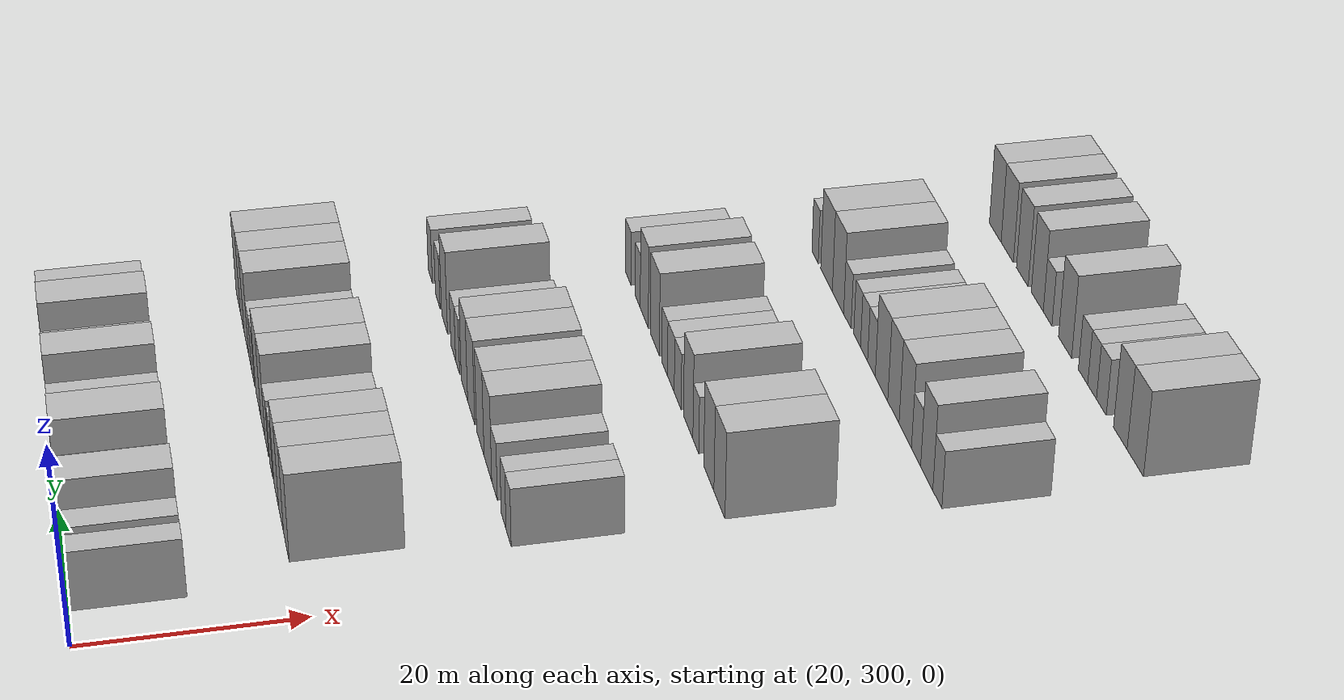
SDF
<sdf version="1.6">
 <world name="default">
  <model name="building_145">
   <static>1</static>
   <pose>25.0000 306.1564 0 0.000000 0.000000 0.000000</pose>
   <link name="link">
    <pose>0 0 3.00 0 0 0</pose>
    <collision name="collision"><geometry><box><size>10.0000 2.5360 6.0000</size></box></geometry></collision>
    <visual name="visual">
     <cast_shadows>0</cast_shadows>
     <geometry><box><size>10.0000 2.5360 6.0000</size></box></geometry>
     <material>
      <script>
       <uri>model://HANNAS_wall/materials/scripts</uri>
       <uri>model://HANNAS_wall/materials/textures</uri>
       <name>vrc/HANNAS_wall</name>
      </script>
     </material>
    </visual>
   </link>
  </model>
  <model name="building_146">
   <static>1</static>
   <pose>25.0000 309.7866 0 0.000000 0.000000 0.000000</pose>
   <link name="link">
    <pose>0 0 3.00 0 0 0</pose>
    <collision name="collision"><geometry><box><size>10.0000 2.7243 6.0000</size></box></geometry></collision>
    <visual name="visual">
     <cast_shadows>0</cast_shadows>
     <geometry><box><size>10.0000 2.7243 6.0000</size></box></geometry>
     <material>
      <script>
       <uri>model://HANNAS_wall/materials/scripts</uri>
       <uri>model://HANNAS_wall/materials/textures</uri>
       <name>vrc/HANNAS_wall</name>
      </script>
     </material>
    </visual>
   </link>
  </model>
  <model name="building_147">
   <static>1</static>
   <pose>25.0000 313.0411 0 0.000000 0.000000 0.000000</pose>
   <link name="link">
    <pose>0 0 4.50 0 0 0</pose>
    <collision name="collision"><geometry><box><size>10.0000 3.7847 9.0000</size></box></geometry></collision>
    <visual name="visual">
     <cast_shadows>0</cast_shadows>
     <geometry><box><size>10.0000 3.7847 9.0000</size></box></geometry>
     <material>
      <script>
       <uri>model://HANNAS_wall/materials/scripts</uri>
       <uri>model://HANNAS_wall/materials/textures</uri>
       <name>vrc/HANNAS_wall</name>
      </script>
     </material>
    </visual>
   </link>
  </model>
  <model name="building_148">
   <static>1</static>
   <pose>25.0000 318.2335 0 0.000000 0.000000 0.000000</pose>
   <link name="link">
    <pose>0 0 3.00 0 0 0</pose>
    <collision name="collision"><geometry><box><size>10.0000 2.6001 6.0000</size></box></geometry></collision>
    <visual name="visual">
     <cast_shadows>0</cast_shadows>
     <geometry><box><size>10.0000 2.6001 6.0000</size></box></geometry>
     <material>
      <script>
       <uri>model://HANNAS_wall/materials/scripts</uri>
       <uri>model://HANNAS_wall/materials/textures</uri>
       <name>vrc/HANNAS_wall</name>
      </script>
     </material>
    </visual>
   </link>
  </model>
  <model name="building_149">
   <static>1</static>
   <pose>25.0000 322.7456 0 0.000000 0.000000 0.000000</pose>
   <link name="link">
    <pose>0 0 4.50 0 0 0</pose>
    <collision name="collision"><geometry><box><size>10.0000 4.4243 9.0000</size></box></geometry></collision>
    <visual name="visual">
     <cast_shadows>0</cast_shadows>
     <geometry><box><size>10.0000 4.4243 9.0000</size></box></geometry>
     <material>
      <script>
       <uri>model://HANNAS_wall/materials/scripts</uri>
       <uri>model://HANNAS_wall/materials/textures</uri>
       <name>vrc/HANNAS_wall</name>
      </script>
     </material>
    </visual>
   </link>
  </model>
  <model name="building_150">
   <static>1</static>
   <pose>25.0000 326.2612 0 0.000000 0.000000 0.000000</pose>
   <link name="link">
    <pose>0 0 3.00 0 0 0</pose>
    <collision name="collision"><geometry><box><size>10.0000 2.6069 6.0000</size></box></geometry></collision>
    <visual name="visual">
     <cast_shadows>0</cast_shadows>
     <geometry><box><size>10.0000 2.6069 6.0000</size></box></geometry>
     <material>
      <script>
       <uri>model://HANNAS_wall/materials/scripts</uri>
       <uri>model://HANNAS_wall/materials/textures</uri>
       <name>vrc/HANNAS_wall</name>
      </script>
     </material>
    </visual>
   </link>
  </model>
  <model name="building_151">
   <static>1</static>
   <pose>25.0000 329.9528 0 0.000000 0.000000 0.000000</pose>
   <link name="link">
    <pose>0 0 3.00 0 0 0</pose>
    <collision name="collision"><geometry><box><size>10.0000 2.7761 6.0000</size></box></geometry></collision>
    <visual name="visual">
     <cast_shadows>0</cast_shadows>
     <geometry><box><size>10.0000 2.7761 6.0000</size></box></geometry>
     <material>
      <script>
       <uri>model://HANNAS_wall/materials/scripts</uri>
       <uri>model://HANNAS_wall/materials/textures</uri>
       <name>vrc/HANNAS_wall</name>
      </script>
     </material>
    </visual>
   </link>
  </model>
  <model name="building_152">
   <static>1</static>
   <pose>25.0000 333.2671 0 0.000000 0.000000 0.000000</pose>
   <link name="link">
    <pose>0 0 4.50 0 0 0</pose>
    <collision name="collision"><geometry><box><size>10.0000 3.8526 9.0000</size></box></geometry></collision>
    <visual name="visual">
     <cast_shadows>0</cast_shadows>
     <geometry><box><size>10.0000 3.8526 9.0000</size></box></geometry>
     <material>
      <script>
       <uri>model://HANNAS_wall/materials/scripts</uri>
       <uri>model://HANNAS_wall/materials/textures</uri>
       <name>vrc/HANNAS_wall</name>
      </script>
     </material>
    </visual>
   </link>
  </model>
  <model name="building_153">
   <static>1</static>
   <pose>25.0000 336.4068 0 0.000000 0.000000 0.000000</pose>
   <link name="link">
    <pose>0 0 3.00 0 0 0</pose>
    <collision name="collision"><geometry><box><size>10.0000 2.4267 6.0000</size></box></geometry></collision>
    <visual name="visual">
     <cast_shadows>0</cast_shadows>
     <geometry><box><size>10.0000 2.4267 6.0000</size></box></geometry>
     <material>
      <script>
       <uri>model://HANNAS_wall/materials/scripts</uri>
       <uri>model://HANNAS_wall/materials/textures</uri>
       <name>vrc/HANNAS_wall</name>
      </script>
     </material>
    </visual>
   </link>
  </model>
  <model name="building_154">
   <static>1</static>
   <pose>25.0000 339.0097 0 0.000000 0.000000 0.000000</pose>
   <link name="link">
    <pose>0 0 3.00 0 0 0</pose>
    <collision name="collision"><geometry><box><size>10.0000 2.7791 6.0000</size></box></geometry></collision>
    <visual name="visual">
     <cast_shadows>0</cast_shadows>
     <geometry><box><size>10.0000 2.7791 6.0000</size></box></geometry>
     <material>
      <script>
       <uri>model://HANNAS_wall/materials/scripts</uri>
       <uri>model://HANNAS_wall/materials/textures</uri>
       <name>vrc/HANNAS_wall</name>
      </script>
     </material>
    </visual>
   </link>
  </model>
  <model name="building_155">
   <static>1</static>
   <pose>25.0000 342.4067 0 0.000000 0.000000 0.000000</pose>
   <link name="link">
    <pose>0 0 4.50 0 0 0</pose>
    <collision name="collision"><geometry><box><size>10.0000 4.0149 9.0000</size></box></geometry></collision>
    <visual name="visual">
     <cast_shadows>0</cast_shadows>
     <geometry><box><size>10.0000 4.0149 9.0000</size></box></geometry>
     <material>
      <script>
       <uri>model://HANNAS_wall/materials/scripts</uri>
       <uri>model://HANNAS_wall/materials/textures</uri>
       <name>vrc/HANNAS_wall</name>
      </script>
     </material>
    </visual>
   </link>
  </model>
  <model name="building_156">
   <static>1</static>
   <pose>25.0000 347.7137 0 0.000000 0.000000 0.000000</pose>
   <link name="link">
    <pose>0 0 3.00 0 0 0</pose>
    <collision name="collision"><geometry><box><size>10.0000 2.5991 6.0000</size></box></geometry></collision>
    <visual name="visual">
     <cast_shadows>0</cast_shadows>
     <geometry><box><size>10.0000 2.5991 6.0000</size></box></geometry>
     <material>
      <script>
       <uri>model://HANNAS_wall/materials/scripts</uri>
       <uri>model://HANNAS_wall/materials/textures</uri>
       <name>vrc/HANNAS_wall</name>
      </script>
     </material>
    </visual>
   </link>
  </model>
  <model name="building_157">
   <static>1</static>
   <pose>25.0000 350.2978 0 0.000000 0.000000 0.000000</pose>
   <link name="link">
    <pose>0 0 3.00 0 0 0</pose>
    <collision name="collision"><geometry><box><size>10.0000 2.5691 6.0000</size></box></geometry></collision>
    <visual name="visual">
     <cast_shadows>0</cast_shadows>
     <geometry><box><size>10.0000 2.5691 6.0000</size></box></geometry>
     <material>
      <script>
       <uri>model://HANNAS_wall/materials/scripts</uri>
       <uri>model://HANNAS_wall/materials/textures</uri>
       <name>vrc/HANNAS_wall</name>
      </script>
     </material>
    </visual>
   </link>
  </model>
  <model name="building_312">
   <static>1</static>
   <pose>44.0000 310.3287 0 0.000000 0.000000 0.000000</pose>
   <link name="link">
    <pose>0 0 4.50 0 0 0</pose>
    <collision name="collision"><geometry><box><size>10.0000 4.3116 9.0000</size></box></geometry></collision>
    <visual name="visual">
     <cast_shadows>0</cast_shadows>
     <geometry><box><size>10.0000 4.3116 9.0000</size></box></geometry>
     <material>
      <script>
       <uri>model://HANNAS_wall/materials/scripts</uri>
       <uri>model://HANNAS_wall/materials/textures</uri>
       <name>vrc/HANNAS_wall</name>
      </script>
     </material>
    </visual>
   </link>
  </model>
  <model name="building_313">
   <static>1</static>
   <pose>44.0000 314.3940 0 0.000000 0.000000 0.000000</pose>
   <link name="link">
    <pose>0 0 4.50 0 0 0</pose>
    <collision name="collision"><geometry><box><size>10.0000 3.8190 9.0000</size></box></geometry></collision>
    <visual name="visual">
     <cast_shadows>0</cast_shadows>
     <geometry><box><size>10.0000 3.8190 9.0000</size></box></geometry>
     <material>
      <script>
       <uri>model://HANNAS_wall/materials/scripts</uri>
       <uri>model://HANNAS_wall/materials/textures</uri>
       <name>vrc/HANNAS_wall</name>
      </script>
     </material>
    </visual>
   </link>
  </model>
  <model name="building_314">
   <static>1</static>
   <pose>44.0000 318.1452 0 0.000000 0.000000 0.000000</pose>
   <link name="link">
    <pose>0 0 4.50 0 0 0</pose>
    <collision name="collision"><geometry><box><size>10.0000 3.6834 9.0000</size></box></geometry></collision>
    <visual name="visual">
     <cast_shadows>0</cast_shadows>
     <geometry><box><size>10.0000 3.6834 9.0000</size></box></geometry>
     <material>
      <script>
       <uri>model://HANNAS_wall/materials/scripts</uri>
       <uri>model://HANNAS_wall/materials/textures</uri>
       <name>vrc/HANNAS_wall</name>
      </script>
     </material>
    </visual>
   </link>
  </model>
  <model name="building_315">
   <static>1</static>
   <pose>44.0000 322.2474 0 0.000000 0.000000 0.000000</pose>
   <link name="link">
    <pose>0 0 3.00 0 0 0</pose>
    <collision name="collision"><geometry><box><size>10.0000 2.5209 6.0000</size></box></geometry></collision>
    <visual name="visual">
     <cast_shadows>0</cast_shadows>
     <geometry><box><size>10.0000 2.5209 6.0000</size></box></geometry>
     <material>
      <script>
       <uri>model://HANNAS_wall/materials/scripts</uri>
       <uri>model://HANNAS_wall/materials/textures</uri>
       <name>vrc/HANNAS_wall</name>
      </script>
     </material>
    </visual>
   </link>
  </model>
  <model name="building_316">
   <static>1</static>
   <pose>44.0000 325.9877 0 0.000000 0.000000 0.000000</pose>
   <link name="link">
    <pose>0 0 3.00 0 0 0</pose>
    <collision name="collision"><geometry><box><size>10.0000 2.9596 6.0000</size></box></geometry></collision>
    <visual name="visual">
     <cast_shadows>0</cast_shadows>
     <geometry><box><size>10.0000 2.9596 6.0000</size></box></geometry>
     <material>
      <script>
       <uri>model://HANNAS_wall/materials/scripts</uri>
       <uri>model://HANNAS_wall/materials/textures</uri>
       <name>vrc/HANNAS_wall</name>
      </script>
     </material>
    </visual>
   </link>
  </model>
  <model name="building_317">
   <static>1</static>
   <pose>44.0000 329.3368 0 0.000000 0.000000 0.000000</pose>
   <link name="link">
    <pose>0 0 4.50 0 0 0</pose>
    <collision name="collision"><geometry><box><size>10.0000 3.7387 9.0000</size></box></geometry></collision>
    <visual name="visual">
     <cast_shadows>0</cast_shadows>
     <geometry><box><size>10.0000 3.7387 9.0000</size></box></geometry>
     <material>
      <script>
       <uri>model://HANNAS_wall/materials/scripts</uri>
       <uri>model://HANNAS_wall/materials/textures</uri>
       <name>vrc/HANNAS_wall</name>
      </script>
     </material>
    </visual>
   </link>
  </model>
  <model name="building_318">
   <static>1</static>
   <pose>44.0000 333.4392 0 0.000000 0.000000 0.000000</pose>
   <link name="link">
    <pose>0 0 4.50 0 0 0</pose>
    <collision name="collision"><geometry><box><size>10.0000 4.4659 9.0000</size></box></geometry></collision>
    <visual name="visual">
     <cast_shadows>0</cast_shadows>
     <geometry><box><size>10.0000 4.4659 9.0000</size></box></geometry>
     <material>
      <script>
       <uri>model://HANNAS_wall/materials/scripts</uri>
       <uri>model://HANNAS_wall/materials/textures</uri>
       <name>vrc/HANNAS_wall</name>
      </script>
     </material>
    </visual>
   </link>
  </model>
  <model name="building_319">
   <static>1</static>
   <pose>44.0000 338.0121 0 0.000000 0.000000 0.000000</pose>
   <link name="link">
    <pose>0 0 3.00 0 0 0</pose>
    <collision name="collision"><geometry><box><size>10.0000 2.6801 6.0000</size></box></geometry></collision>
    <visual name="visual">
     <cast_shadows>0</cast_shadows>
     <geometry><box><size>10.0000 2.6801 6.0000</size></box></geometry>
     <material>
      <script>
       <uri>model://HANNAS_wall/materials/scripts</uri>
       <uri>model://HANNAS_wall/materials/textures</uri>
       <name>vrc/HANNAS_wall</name>
      </script>
     </material>
    </visual>
   </link>
  </model>
  <model name="building_320">
   <static>1</static>
   <pose>44.0000 340.7081 0 0.000000 0.000000 0.000000</pose>
   <link name="link">
    <pose>0 0 3.00 0 0 0</pose>
    <collision name="collision"><geometry><box><size>10.0000 2.7119 6.0000</size></box></geometry></collision>
    <visual name="visual">
     <cast_shadows>0</cast_shadows>
     <geometry><box><size>10.0000 2.7119 6.0000</size></box></geometry>
     <material>
      <script>
       <uri>model://HANNAS_wall/materials/scripts</uri>
       <uri>model://HANNAS_wall/materials/textures</uri>
       <name>vrc/HANNAS_wall</name>
      </script>
     </material>
    </visual>
   </link>
  </model>
  <model name="building_321">
   <static>1</static>
   <pose>44.0000 344.1248 0 0.000000 0.000000 0.000000</pose>
   <link name="link">
    <pose>0 0 4.50 0 0 0</pose>
    <collision name="collision"><geometry><box><size>10.0000 4.1216 9.0000</size></box></geometry></collision>
    <visual name="visual">
     <cast_shadows>0</cast_shadows>
     <geometry><box><size>10.0000 4.1216 9.0000</size></box></geometry>
     <material>
      <script>
       <uri>model://HANNAS_wall/materials/scripts</uri>
       <uri>model://HANNAS_wall/materials/textures</uri>
       <name>vrc/HANNAS_wall</name>
      </script>
     </material>
    </visual>
   </link>
  </model>
  <model name="building_322">
   <static>1</static>
   <pose>44.0000 347.9957 0 0.000000 0.000000 0.000000</pose>
   <link name="link">
    <pose>0 0 4.50 0 0 0</pose>
    <collision name="collision"><geometry><box><size>10.0000 3.6202 9.0000</size></box></geometry></collision>
    <visual name="visual">
     <cast_shadows>0</cast_shadows>
     <geometry><box><size>10.0000 3.6202 9.0000</size></box></geometry>
     <material>
      <script>
       <uri>model://HANNAS_wall/materials/scripts</uri>
       <uri>model://HANNAS_wall/materials/textures</uri>
       <name>vrc/HANNAS_wall</name>
      </script>
     </material>
    </visual>
   </link>
  </model>
  <model name="building_323">
   <static>1</static>
   <pose>44.0000 351.8408 0 0.000000 0.000000 0.000000</pose>
   <link name="link">
    <pose>0 0 4.50 0 0 0</pose>
    <collision name="collision"><geometry><box><size>10.0000 4.0699 9.0000</size></box></geometry></collision>
    <visual name="visual">
     <cast_shadows>0</cast_shadows>
     <geometry><box><size>10.0000 4.0699 9.0000</size></box></geometry>
     <material>
      <script>
       <uri>model://HANNAS_wall/materials/scripts</uri>
       <uri>model://HANNAS_wall/materials/textures</uri>
       <name>vrc/HANNAS_wall</name>
      </script>
     </material>
    </visual>
   </link>
  </model>
  <model name="building_485">
   <static>1</static>
   <pose>63.0000 307.8950 0 0.000000 0.000000 0.000000</pose>
   <link name="link">
    <pose>0 0 3.00 0 0 0</pose>
    <collision name="collision"><geometry><box><size>10.0000 2.6273 6.0000</size></box></geometry></collision>
    <visual name="visual">
     <cast_shadows>0</cast_shadows>
     <geometry><box><size>10.0000 2.6273 6.0000</size></box></geometry>
     <material>
      <script>
       <uri>model://HANNAS_wall/materials/scripts</uri>
       <uri>model://HANNAS_wall/materials/textures</uri>
       <name>vrc/HANNAS_wall</name>
      </script>
     </material>
    </visual>
   </link>
  </model>
  <model name="building_486">
   <static>1</static>
   <pose>63.0000 310.4491 0 0.000000 0.000000 0.000000</pose>
   <link name="link">
    <pose>0 0 3.00 0 0 0</pose>
    <collision name="collision"><geometry><box><size>10.0000 2.4809 6.0000</size></box></geometry></collision>
    <visual name="visual">
     <cast_shadows>0</cast_shadows>
     <geometry><box><size>10.0000 2.4809 6.0000</size></box></geometry>
     <material>
      <script>
       <uri>model://HANNAS_wall/materials/scripts</uri>
       <uri>model://HANNAS_wall/materials/textures</uri>
       <name>vrc/HANNAS_wall</name>
      </script>
     </material>
    </visual>
   </link>
  </model>
  <model name="building_487">
   <static>1</static>
   <pose>63.0000 315.1837 0 0.000000 0.000000 0.000000</pose>
   <link name="link">
    <pose>0 0 3.00 0 0 0</pose>
    <collision name="collision"><geometry><box><size>10.0000 2.9883 6.0000</size></box></geometry></collision>
    <visual name="visual">
     <cast_shadows>0</cast_shadows>
     <geometry><box><size>10.0000 2.9883 6.0000</size></box></geometry>
     <material>
      <script>
       <uri>model://HANNAS_wall/materials/scripts</uri>
       <uri>model://HANNAS_wall/materials/textures</uri>
       <name>vrc/HANNAS_wall</name>
      </script>
     </material>
    </visual>
   </link>
  </model>
  <model name="building_488">
   <static>1</static>
   <pose>63.0000 318.7390 0 0.000000 0.000000 0.000000</pose>
   <link name="link">
    <pose>0 0 4.50 0 0 0</pose>
    <collision name="collision"><geometry><box><size>10.0000 4.1222 9.0000</size></box></geometry></collision>
    <visual name="visual">
     <cast_shadows>0</cast_shadows>
     <geometry><box><size>10.0000 4.1222 9.0000</size></box></geometry>
     <material>
      <script>
       <uri>model://HANNAS_wall/materials/scripts</uri>
       <uri>model://HANNAS_wall/materials/textures</uri>
       <name>vrc/HANNAS_wall</name>
      </script>
     </material>
    </visual>
   </link>
  </model>
  <model name="building_489">
   <static>1</static>
   <pose>63.0000 322.8776 0 0.000000 0.000000 0.000000</pose>
   <link name="link">
    <pose>0 0 4.50 0 0 0</pose>
    <collision name="collision"><geometry><box><size>10.0000 4.1550 9.0000</size></box></geometry></collision>
    <visual name="visual">
     <cast_shadows>0</cast_shadows>
     <geometry><box><size>10.0000 4.1550 9.0000</size></box></geometry>
     <material>
      <script>
       <uri>model://HANNAS_wall/materials/scripts</uri>
       <uri>model://HANNAS_wall/materials/textures</uri>
       <name>vrc/HANNAS_wall</name>
      </script>
     </material>
    </visual>
   </link>
  </model>
  <model name="building_490">
   <static>1</static>
   <pose>63.0000 328.0046 0 0.000000 0.000000 0.000000</pose>
   <link name="link">
    <pose>0 0 4.50 0 0 0</pose>
    <collision name="collision"><geometry><box><size>10.0000 4.0990 9.0000</size></box></geometry></collision>
    <visual name="visual">
     <cast_shadows>0</cast_shadows>
     <geometry><box><size>10.0000 4.0990 9.0000</size></box></geometry>
     <material>
      <script>
       <uri>model://HANNAS_wall/materials/scripts</uri>
       <uri>model://HANNAS_wall/materials/textures</uri>
       <name>vrc/HANNAS_wall</name>
      </script>
     </material>
    </visual>
   </link>
  </model>
  <model name="building_491">
   <static>1</static>
   <pose>63.0000 331.8834 0 0.000000 0.000000 0.000000</pose>
   <link name="link">
    <pose>0 0 4.50 0 0 0</pose>
    <collision name="collision"><geometry><box><size>10.0000 3.6585 9.0000</size></box></geometry></collision>
    <visual name="visual">
     <cast_shadows>0</cast_shadows>
     <geometry><box><size>10.0000 3.6585 9.0000</size></box></geometry>
     <material>
      <script>
       <uri>model://HANNAS_wall/materials/scripts</uri>
       <uri>model://HANNAS_wall/materials/textures</uri>
       <name>vrc/HANNAS_wall</name>
      </script>
     </material>
    </visual>
   </link>
  </model>
  <model name="building_492">
   <static>1</static>
   <pose>63.0000 335.9344 0 0.000000 0.000000 0.000000</pose>
   <link name="link">
    <pose>0 0 3.00 0 0 0</pose>
    <collision name="collision"><geometry><box><size>10.0000 2.4436 6.0000</size></box></geometry></collision>
    <visual name="visual">
     <cast_shadows>0</cast_shadows>
     <geometry><box><size>10.0000 2.4436 6.0000</size></box></geometry>
     <material>
      <script>
       <uri>model://HANNAS_wall/materials/scripts</uri>
       <uri>model://HANNAS_wall/materials/textures</uri>
       <name>vrc/HANNAS_wall</name>
      </script>
     </material>
    </visual>
   </link>
  </model>
  <model name="building_493">
   <static>1</static>
   <pose>63.0000 338.6077 0 0.000000 0.000000 0.000000</pose>
   <link name="link">
    <pose>0 0 3.00 0 0 0</pose>
    <collision name="collision"><geometry><box><size>10.0000 2.9028 6.0000</size></box></geometry></collision>
    <visual name="visual">
     <cast_shadows>0</cast_shadows>
     <geometry><box><size>10.0000 2.9028 6.0000</size></box></geometry>
     <material>
      <script>
       <uri>model://HANNAS_wall/materials/scripts</uri>
       <uri>model://HANNAS_wall/materials/textures</uri>
       <name>vrc/HANNAS_wall</name>
      </script>
     </material>
    </visual>
   </link>
  </model>
  <model name="building_494">
   <static>1</static>
   <pose>63.0000 343.9026 0 0.000000 0.000000 0.000000</pose>
   <link name="link">
    <pose>0 0 4.50 0 0 0</pose>
    <collision name="collision"><geometry><box><size>10.0000 3.6872 9.0000</size></box></geometry></collision>
    <visual name="visual">
     <cast_shadows>0</cast_shadows>
     <geometry><box><size>10.0000 3.6872 9.0000</size></box></geometry>
     <material>
      <script>
       <uri>model://HANNAS_wall/materials/scripts</uri>
       <uri>model://HANNAS_wall/materials/textures</uri>
       <name>vrc/HANNAS_wall</name>
      </script>
     </material>
    </visual>
   </link>
  </model>
  <model name="building_495">
   <static>1</static>
   <pose>63.0000 348.2128 0 0.000000 0.000000 0.000000</pose>
   <link name="link">
    <pose>0 0 3.00 0 0 0</pose>
    <collision name="collision"><geometry><box><size>10.0000 2.9332 6.0000</size></box></geometry></collision>
    <visual name="visual">
     <cast_shadows>0</cast_shadows>
     <geometry><box><size>10.0000 2.9332 6.0000</size></box></geometry>
     <material>
      <script>
       <uri>model://HANNAS_wall/materials/scripts</uri>
       <uri>model://HANNAS_wall/materials/textures</uri>
       <name>vrc/HANNAS_wall</name>
      </script>
     </material>
    </visual>
   </link>
  </model>
  <model name="building_496">
   <static>1</static>
   <pose>63.0000 353.0193 0 0.000000 0.000000 0.000000</pose>
   <link name="link">
    <pose>0 0 3.00 0 0 0</pose>
    <collision name="collision"><geometry><box><size>10.0000 2.6798 6.0000</size></box></geometry></collision>
    <visual name="visual">
     <cast_shadows>0</cast_shadows>
     <geometry><box><size>10.0000 2.6798 6.0000</size></box></geometry>
     <material>
      <script>
       <uri>model://HANNAS_wall/materials/scripts</uri>
       <uri>model://HANNAS_wall/materials/textures</uri>
       <name>vrc/HANNAS_wall</name>
      </script>
     </material>
    </visual>
   </link>
  </model>
  <model name="building_667">
   <static>1</static>
   <pose>82.0000 309.0758 0 0.000000 0.000000 0.000000</pose>
   <link name="link">
    <pose>0 0 4.50 0 0 0</pose>
    <collision name="collision"><geometry><box><size>10.0000 4.3277 9.0000</size></box></geometry></collision>
    <visual name="visual">
     <cast_shadows>0</cast_shadows>
     <geometry><box><size>10.0000 4.3277 9.0000</size></box></geometry>
     <material>
      <script>
       <uri>model://HANNAS_wall/materials/scripts</uri>
       <uri>model://HANNAS_wall/materials/textures</uri>
       <name>vrc/HANNAS_wall</name>
      </script>
     </material>
    </visual>
   </link>
  </model>
  <model name="building_668">
   <static>1</static>
   <pose>82.0000 313.2786 0 0.000000 0.000000 0.000000</pose>
   <link name="link">
    <pose>0 0 4.50 0 0 0</pose>
    <collision name="collision"><geometry><box><size>10.0000 4.0779 9.0000</size></box></geometry></collision>
    <visual name="visual">
     <cast_shadows>0</cast_shadows>
     <geometry><box><size>10.0000 4.0779 9.0000</size></box></geometry>
     <material>
      <script>
       <uri>model://HANNAS_wall/materials/scripts</uri>
       <uri>model://HANNAS_wall/materials/textures</uri>
       <name>vrc/HANNAS_wall</name>
      </script>
     </material>
    </visual>
   </link>
  </model>
  <model name="building_669">
   <static>1</static>
   <pose>82.0000 318.5305 0 0.000000 0.000000 0.000000</pose>
   <link name="link">
    <pose>0 0 3.00 0 0 0</pose>
    <collision name="collision"><geometry><box><size>10.0000 2.4260 6.0000</size></box></geometry></collision>
    <visual name="visual">
     <cast_shadows>0</cast_shadows>
     <geometry><box><size>10.0000 2.4260 6.0000</size></box></geometry>
     <material>
      <script>
       <uri>model://HANNAS_wall/materials/scripts</uri>
       <uri>model://HANNAS_wall/materials/textures</uri>
       <name>vrc/HANNAS_wall</name>
      </script>
     </material>
    </visual>
   </link>
  </model>
  <model name="building_670">
   <static>1</static>
   <pose>82.0000 321.7026 0 0.000000 0.000000 0.000000</pose>
   <link name="link">
    <pose>0 0 4.50 0 0 0</pose>
    <collision name="collision"><geometry><box><size>10.0000 3.9182 9.0000</size></box></geometry></collision>
    <visual name="visual">
     <cast_shadows>0</cast_shadows>
     <geometry><box><size>10.0000 3.9182 9.0000</size></box></geometry>
     <material>
      <script>
       <uri>model://HANNAS_wall/materials/scripts</uri>
       <uri>model://HANNAS_wall/materials/textures</uri>
       <name>vrc/HANNAS_wall</name>
      </script>
     </material>
    </visual>
   </link>
  </model>
  <model name="building_671">
   <static>1</static>
   <pose>82.0000 326.1515 0 0.000000 0.000000 0.000000</pose>
   <link name="link">
    <pose>0 0 3.00 0 0 0</pose>
    <collision name="collision"><geometry><box><size>10.0000 2.9794 6.0000</size></box></geometry></collision>
    <visual name="visual">
     <cast_shadows>0</cast_shadows>
     <geometry><box><size>10.0000 2.9794 6.0000</size></box></geometry>
     <material>
      <script>
       <uri>model://HANNAS_wall/materials/scripts</uri>
       <uri>model://HANNAS_wall/materials/textures</uri>
       <name>vrc/HANNAS_wall</name>
      </script>
     </material>
    </visual>
   </link>
  </model>
  <model name="building_672">
   <static>1</static>
   <pose>82.0000 329.1086 0 0.000000 0.000000 0.000000</pose>
   <link name="link">
    <pose>0 0 3.00 0 0 0</pose>
    <collision name="collision"><geometry><box><size>10.0000 2.9348 6.0000</size></box></geometry></collision>
    <visual name="visual">
     <cast_shadows>0</cast_shadows>
     <geometry><box><size>10.0000 2.9348 6.0000</size></box></geometry>
     <material>
      <script>
       <uri>model://HANNAS_wall/materials/scripts</uri>
       <uri>model://HANNAS_wall/materials/textures</uri>
       <name>vrc/HANNAS_wall</name>
      </script>
     </material>
    </visual>
   </link>
  </model>
  <model name="building_673">
   <static>1</static>
   <pose>82.0000 331.8655 0 0.000000 0.000000 0.000000</pose>
   <link name="link">
    <pose>0 0 3.00 0 0 0</pose>
    <collision name="collision"><geometry><box><size>10.0000 2.5792 6.0000</size></box></geometry></collision>
    <visual name="visual">
     <cast_shadows>0</cast_shadows>
     <geometry><box><size>10.0000 2.5792 6.0000</size></box></geometry>
     <material>
      <script>
       <uri>model://HANNAS_wall/materials/scripts</uri>
       <uri>model://HANNAS_wall/materials/textures</uri>
       <name>vrc/HANNAS_wall</name>
      </script>
     </material>
    </visual>
   </link>
  </model>
  <model name="building_674">
   <static>1</static>
   <pose>82.0000 336.1898 0 0.000000 0.000000 0.000000</pose>
   <link name="link">
    <pose>0 0 4.50 0 0 0</pose>
    <collision name="collision"><geometry><box><size>10.0000 4.0694 9.0000</size></box></geometry></collision>
    <visual name="visual">
     <cast_shadows>0</cast_shadows>
     <geometry><box><size>10.0000 4.0694 9.0000</size></box></geometry>
     <material>
      <script>
       <uri>model://HANNAS_wall/materials/scripts</uri>
       <uri>model://HANNAS_wall/materials/textures</uri>
       <name>vrc/HANNAS_wall</name>
      </script>
     </material>
    </visual>
   </link>
  </model>
  <model name="building_675">
   <static>1</static>
   <pose>82.0000 341.1005 0 0.000000 0.000000 0.000000</pose>
   <link name="link">
    <pose>0 0 4.50 0 0 0</pose>
    <collision name="collision"><geometry><box><size>10.0000 3.7518 9.0000</size></box></geometry></collision>
    <visual name="visual">
     <cast_shadows>0</cast_shadows>
     <geometry><box><size>10.0000 3.7518 9.0000</size></box></geometry>
     <material>
      <script>
       <uri>model://HANNAS_wall/materials/scripts</uri>
       <uri>model://HANNAS_wall/materials/textures</uri>
       <name>vrc/HANNAS_wall</name>
      </script>
     </material>
    </visual>
   </link>
  </model>
  <model name="building_676">
   <static>1</static>
   <pose>82.0000 344.1815 0 0.000000 0.000000 0.000000</pose>
   <link name="link">
    <pose>0 0 3.00 0 0 0</pose>
    <collision name="collision"><geometry><box><size>10.0000 2.4103 6.0000</size></box></geometry></collision>
    <visual name="visual">
     <cast_shadows>0</cast_shadows>
     <geometry><box><size>10.0000 2.4103 6.0000</size></box></geometry>
     <material>
      <script>
       <uri>model://HANNAS_wall/materials/scripts</uri>
       <uri>model://HANNAS_wall/materials/textures</uri>
       <name>vrc/HANNAS_wall</name>
      </script>
     </material>
    </visual>
   </link>
  </model>
  <model name="building_677">
   <static>1</static>
   <pose>82.0000 348.7881 0 0.000000 0.000000 0.000000</pose>
   <link name="link">
    <pose>0 0 3.00 0 0 0</pose>
    <collision name="collision"><geometry><box><size>10.0000 2.8028 6.0000</size></box></geometry></collision>
    <visual name="visual">
     <cast_shadows>0</cast_shadows>
     <geometry><box><size>10.0000 2.8028 6.0000</size></box></geometry>
     <material>
      <script>
       <uri>model://HANNAS_wall/materials/scripts</uri>
       <uri>model://HANNAS_wall/materials/textures</uri>
       <name>vrc/HANNAS_wall</name>
      </script>
     </material>
    </visual>
   </link>
  </model>
  <model name="building_840">
   <static>1</static>
   <pose>101.0000 306.0359 0 0.000000 0.000000 0.000000</pose>
   <link name="link">
    <pose>0 0 3.00 0 0 0</pose>
    <collision name="collision"><geometry><box><size>10.0000 2.8325 6.0000</size></box></geometry></collision>
    <visual name="visual">
     <cast_shadows>0</cast_shadows>
     <geometry><box><size>10.0000 2.8325 6.0000</size></box></geometry>
     <material>
      <script>
       <uri>model://HANNAS_wall/materials/scripts</uri>
       <uri>model://HANNAS_wall/materials/textures</uri>
       <name>vrc/HANNAS_wall</name>
      </script>
     </material>
    </visual>
   </link>
  </model>
  <model name="building_841">
   <static>1</static>
   <pose>101.0000 309.3838 0 0.000000 0.000000 0.000000</pose>
   <link name="link">
    <pose>0 0 4.50 0 0 0</pose>
    <collision name="collision"><geometry><box><size>10.0000 3.8634 9.0000</size></box></geometry></collision>
    <visual name="visual">
     <cast_shadows>0</cast_shadows>
     <geometry><box><size>10.0000 3.8634 9.0000</size></box></geometry>
     <material>
      <script>
       <uri>model://HANNAS_wall/materials/scripts</uri>
       <uri>model://HANNAS_wall/materials/textures</uri>
       <name>vrc/HANNAS_wall</name>
      </script>
     </material>
    </visual>
   </link>
  </model>
  <model name="building_842">
   <static>1</static>
   <pose>101.0000 312.8045 0 0.000000 0.000000 0.000000</pose>
   <link name="link">
    <pose>0 0 3.00 0 0 0</pose>
    <collision name="collision"><geometry><box><size>10.0000 2.9780 6.0000</size></box></geometry></collision>
    <visual name="visual">
     <cast_shadows>0</cast_shadows>
     <geometry><box><size>10.0000 2.9780 6.0000</size></box></geometry>
     <material>
      <script>
       <uri>model://HANNAS_wall/materials/scripts</uri>
       <uri>model://HANNAS_wall/materials/textures</uri>
       <name>vrc/HANNAS_wall</name>
      </script>
     </material>
    </visual>
   </link>
  </model>
  <model name="building_843">
   <static>1</static>
   <pose>101.0000 316.3545 0 0.000000 0.000000 0.000000</pose>
   <link name="link">
    <pose>0 0 4.50 0 0 0</pose>
    <collision name="collision"><geometry><box><size>10.0000 4.1221 9.0000</size></box></geometry></collision>
    <visual name="visual">
     <cast_shadows>0</cast_shadows>
     <geometry><box><size>10.0000 4.1221 9.0000</size></box></geometry>
     <material>
      <script>
       <uri>model://HANNAS_wall/materials/scripts</uri>
       <uri>model://HANNAS_wall/materials/textures</uri>
       <name>vrc/HANNAS_wall</name>
      </script>
     </material>
    </visual>
   </link>
  </model>
  <model name="building_844">
   <static>1</static>
   <pose>101.0000 320.3228 0 0.000000 0.000000 0.000000</pose>
   <link name="link">
    <pose>0 0 4.50 0 0 0</pose>
    <collision name="collision"><geometry><box><size>10.0000 3.8145 9.0000</size></box></geometry></collision>
    <visual name="visual">
     <cast_shadows>0</cast_shadows>
     <geometry><box><size>10.0000 3.8145 9.0000</size></box></geometry>
     <material>
      <script>
       <uri>model://HANNAS_wall/materials/scripts</uri>
       <uri>model://HANNAS_wall/materials/textures</uri>
       <name>vrc/HANNAS_wall</name>
      </script>
     </material>
    </visual>
   </link>
  </model>
  <model name="building_845">
   <static>1</static>
   <pose>101.0000 324.3955 0 0.000000 0.000000 0.000000</pose>
   <link name="link">
    <pose>0 0 4.50 0 0 0</pose>
    <collision name="collision"><geometry><box><size>10.0000 4.3309 9.0000</size></box></geometry></collision>
    <visual name="visual">
     <cast_shadows>0</cast_shadows>
     <geometry><box><size>10.0000 4.3309 9.0000</size></box></geometry>
     <material>
      <script>
       <uri>model://HANNAS_wall/materials/scripts</uri>
       <uri>model://HANNAS_wall/materials/textures</uri>
       <name>vrc/HANNAS_wall</name>
      </script>
     </material>
    </visual>
   </link>
  </model>
  <model name="building_846">
   <static>1</static>
   <pose>101.0000 327.9222 0 0.000000 0.000000 0.000000</pose>
   <link name="link">
    <pose>0 0 3.00 0 0 0</pose>
    <collision name="collision"><geometry><box><size>10.0000 2.7226 6.0000</size></box></geometry></collision>
    <visual name="visual">
     <cast_shadows>0</cast_shadows>
     <geometry><box><size>10.0000 2.7226 6.0000</size></box></geometry>
     <material>
      <script>
       <uri>model://HANNAS_wall/materials/scripts</uri>
       <uri>model://HANNAS_wall/materials/textures</uri>
       <name>vrc/HANNAS_wall</name>
      </script>
     </material>
    </visual>
   </link>
  </model>
  <model name="building_847">
   <static>1</static>
   <pose>101.0000 330.5550 0 0.000000 0.000000 0.000000</pose>
   <link name="link">
    <pose>0 0 3.00 0 0 0</pose>
    <collision name="collision"><geometry><box><size>10.0000 2.5430 6.0000</size></box></geometry></collision>
    <visual name="visual">
     <cast_shadows>0</cast_shadows>
     <geometry><box><size>10.0000 2.5430 6.0000</size></box></geometry>
     <material>
      <script>
       <uri>model://HANNAS_wall/materials/scripts</uri>
       <uri>model://HANNAS_wall/materials/textures</uri>
       <name>vrc/HANNAS_wall</name>
      </script>
     </material>
    </visual>
   </link>
  </model>
  <model name="building_848">
   <static>1</static>
   <pose>101.0000 333.0556 0 0.000000 0.000000 0.000000</pose>
   <link name="link">
    <pose>0 0 3.00 0 0 0</pose>
    <collision name="collision"><geometry><box><size>10.0000 2.4581 6.0000</size></box></geometry></collision>
    <visual name="visual">
     <cast_shadows>0</cast_shadows>
     <geometry><box><size>10.0000 2.4581 6.0000</size></box></geometry>
     <material>
      <script>
       <uri>model://HANNAS_wall/materials/scripts</uri>
       <uri>model://HANNAS_wall/materials/textures</uri>
       <name>vrc/HANNAS_wall</name>
      </script>
     </material>
    </visual>
   </link>
  </model>
  <model name="building_849">
   <static>1</static>
   <pose>101.0000 336.6466 0 0.000000 0.000000 0.000000</pose>
   <link name="link">
    <pose>0 0 3.00 0 0 0</pose>
    <collision name="collision"><geometry><box><size>10.0000 2.7241 6.0000</size></box></geometry></collision>
    <visual name="visual">
     <cast_shadows>0</cast_shadows>
     <geometry><box><size>10.0000 2.7241 6.0000</size></box></geometry>
     <material>
      <script>
       <uri>model://HANNAS_wall/materials/scripts</uri>
       <uri>model://HANNAS_wall/materials/textures</uri>
       <name>vrc/HANNAS_wall</name>
      </script>
     </material>
    </visual>
   </link>
  </model>
  <model name="building_850">
   <static>1</static>
   <pose>101.0000 340.1441 0 0.000000 0.000000 0.000000</pose>
   <link name="link">
    <pose>0 0 4.50 0 0 0</pose>
    <collision name="collision"><geometry><box><size>10.0000 4.2708 9.0000</size></box></geometry></collision>
    <visual name="visual">
     <cast_shadows>0</cast_shadows>
     <geometry><box><size>10.0000 4.2708 9.0000</size></box></geometry>
     <material>
      <script>
       <uri>model://HANNAS_wall/materials/scripts</uri>
       <uri>model://HANNAS_wall/materials/textures</uri>
       <name>vrc/HANNAS_wall</name>
      </script>
     </material>
    </visual>
   </link>
  </model>
  <model name="building_851">
   <static>1</static>
   <pose>101.0000 344.5245 0 0.000000 0.000000 0.000000</pose>
   <link name="link">
    <pose>0 0 4.50 0 0 0</pose>
    <collision name="collision"><geometry><box><size>10.0000 4.4900 9.0000</size></box></geometry></collision>
    <visual name="visual">
     <cast_shadows>0</cast_shadows>
     <geometry><box><size>10.0000 4.4900 9.0000</size></box></geometry>
     <material>
      <script>
       <uri>model://HANNAS_wall/materials/scripts</uri>
       <uri>model://HANNAS_wall/materials/textures</uri>
       <name>vrc/HANNAS_wall</name>
      </script>
     </material>
    </visual>
   </link>
  </model>
  <model name="building_852">
   <static>1</static>
   <pose>101.0000 349.0218 0 0.000000 0.000000 0.000000</pose>
   <link name="link">
    <pose>0 0 3.00 0 0 0</pose>
    <collision name="collision"><geometry><box><size>10.0000 2.5045 6.0000</size></box></geometry></collision>
    <visual name="visual">
     <cast_shadows>0</cast_shadows>
     <geometry><box><size>10.0000 2.5045 6.0000</size></box></geometry>
     <material>
      <script>
       <uri>model://HANNAS_wall/materials/scripts</uri>
       <uri>model://HANNAS_wall/materials/textures</uri>
       <name>vrc/HANNAS_wall</name>
      </script>
     </material>
    </visual>
   </link>
  </model>
  <model name="building_1010">
   <static>1</static>
   <pose>120.0000 307.9826 0 0.000000 0.000000 0.000000</pose>
   <link name="link">
    <pose>0 0 4.50 0 0 0</pose>
    <collision name="collision"><geometry><box><size>10.0000 4.4032 9.0000</size></box></geometry></collision>
    <visual name="visual">
     <cast_shadows>0</cast_shadows>
     <geometry><box><size>10.0000 4.4032 9.0000</size></box></geometry>
     <material>
      <script>
       <uri>model://HANNAS_wall/materials/scripts</uri>
       <uri>model://HANNAS_wall/materials/textures</uri>
       <name>vrc/HANNAS_wall</name>
      </script>
     </material>
    </visual>
   </link>
  </model>
  <model name="building_1011">
   <static>1</static>
   <pose>120.0000 312.0572 0 0.000000 0.000000 0.000000</pose>
   <link name="link">
    <pose>0 0 4.50 0 0 0</pose>
    <collision name="collision"><geometry><box><size>10.0000 3.7461 9.0000</size></box></geometry></collision>
    <visual name="visual">
     <cast_shadows>0</cast_shadows>
     <geometry><box><size>10.0000 3.7461 9.0000</size></box></geometry>
     <material>
      <script>
       <uri>model://HANNAS_wall/materials/scripts</uri>
       <uri>model://HANNAS_wall/materials/textures</uri>
       <name>vrc/HANNAS_wall</name>
      </script>
     </material>
    </visual>
   </link>
  </model>
  <model name="building_1012">
   <static>1</static>
   <pose>120.0000 317.3220 0 0.000000 0.000000 0.000000</pose>
   <link name="link">
    <pose>0 0 3.00 0 0 0</pose>
    <collision name="collision"><geometry><box><size>10.0000 2.7834 6.0000</size></box></geometry></collision>
    <visual name="visual">
     <cast_shadows>0</cast_shadows>
     <geometry><box><size>10.0000 2.7834 6.0000</size></box></geometry>
     <material>
      <script>
       <uri>model://HANNAS_wall/materials/scripts</uri>
       <uri>model://HANNAS_wall/materials/textures</uri>
       <name>vrc/HANNAS_wall</name>
      </script>
     </material>
    </visual>
   </link>
  </model>
  <model name="building_1013">
   <static>1</static>
   <pose>120.0000 319.9748 0 0.000000 0.000000 0.000000</pose>
   <link name="link">
    <pose>0 0 3.00 0 0 0</pose>
    <collision name="collision"><geometry><box><size>10.0000 2.5222 6.0000</size></box></geometry></collision>
    <visual name="visual">
     <cast_shadows>0</cast_shadows>
     <geometry><box><size>10.0000 2.5222 6.0000</size></box></geometry>
     <material>
      <script>
       <uri>model://HANNAS_wall/materials/scripts</uri>
       <uri>model://HANNAS_wall/materials/textures</uri>
       <name>vrc/HANNAS_wall</name>
      </script>
     </material>
    </visual>
   </link>
  </model>
  <model name="building_1014">
   <static>1</static>
   <pose>120.0000 322.5898 0 0.000000 0.000000 0.000000</pose>
   <link name="link">
    <pose>0 0 3.00 0 0 0</pose>
    <collision name="collision"><geometry><box><size>10.0000 2.7078 6.0000</size></box></geometry></collision>
    <visual name="visual">
     <cast_shadows>0</cast_shadows>
     <geometry><box><size>10.0000 2.7078 6.0000</size></box></geometry>
     <material>
      <script>
       <uri>model://HANNAS_wall/materials/scripts</uri>
       <uri>model://HANNAS_wall/materials/textures</uri>
       <name>vrc/HANNAS_wall</name>
      </script>
     </material>
    </visual>
   </link>
  </model>
  <model name="building_1015">
   <static>1</static>
   <pose>120.0000 327.9056 0 0.000000 0.000000 0.000000</pose>
   <link name="link">
    <pose>0 0 4.50 0 0 0</pose>
    <collision name="collision"><geometry><box><size>10.0000 3.9237 9.0000</size></box></geometry></collision>
    <visual name="visual">
     <cast_shadows>0</cast_shadows>
     <geometry><box><size>10.0000 3.9237 9.0000</size></box></geometry>
     <material>
      <script>
       <uri>model://HANNAS_wall/materials/scripts</uri>
       <uri>model://HANNAS_wall/materials/textures</uri>
       <name>vrc/HANNAS_wall</name>
      </script>
     </material>
    </visual>
   </link>
  </model>
  <model name="building_1016">
   <static>1</static>
   <pose>120.0000 333.2129 0 0.000000 0.000000 0.000000</pose>
   <link name="link">
    <pose>0 0 3.00 0 0 0</pose>
    <collision name="collision"><geometry><box><size>10.0000 2.6909 6.0000</size></box></geometry></collision>
    <visual name="visual">
     <cast_shadows>0</cast_shadows>
     <geometry><box><size>10.0000 2.6909 6.0000</size></box></geometry>
     <material>
      <script>
       <uri>model://HANNAS_wall/materials/scripts</uri>
       <uri>model://HANNAS_wall/materials/textures</uri>
       <name>vrc/HANNAS_wall</name>
      </script>
     </material>
    </visual>
   </link>
  </model>
  <model name="building_1017">
   <static>1</static>
   <pose>120.0000 336.4376 0 0.000000 0.000000 0.000000</pose>
   <link name="link">
    <pose>0 0 4.50 0 0 0</pose>
    <collision name="collision"><geometry><box><size>10.0000 3.7585 9.0000</size></box></geometry></collision>
    <visual name="visual">
     <cast_shadows>0</cast_shadows>
     <geometry><box><size>10.0000 3.7585 9.0000</size></box></geometry>
     <material>
      <script>
       <uri>model://HANNAS_wall/materials/scripts</uri>
       <uri>model://HANNAS_wall/materials/textures</uri>
       <name>vrc/HANNAS_wall</name>
      </script>
     </material>
    </visual>
   </link>
  </model>
  <model name="building_1018">
   <static>1</static>
   <pose>120.0000 341.2025 0 0.000000 0.000000 0.000000</pose>
   <link name="link">
    <pose>0 0 4.50 0 0 0</pose>
    <collision name="collision"><geometry><box><size>10.0000 3.7715 9.0000</size></box></geometry></collision>
    <visual name="visual">
     <cast_shadows>0</cast_shadows>
     <geometry><box><size>10.0000 3.7715 9.0000</size></box></geometry>
     <material>
      <script>
       <uri>model://HANNAS_wall/materials/scripts</uri>
       <uri>model://HANNAS_wall/materials/textures</uri>
       <name>vrc/HANNAS_wall</name>
      </script>
     </material>
    </visual>
   </link>
  </model>
  <model name="building_1019">
   <static>1</static>
   <pose>120.0000 346.1210 0 0.000000 0.000000 0.000000</pose>
   <link name="link">
    <pose>0 0 4.50 0 0 0</pose>
    <collision name="collision"><geometry><box><size>10.0000 4.0654 9.0000</size></box></geometry></collision>
    <visual name="visual">
     <cast_shadows>0</cast_shadows>
     <geometry><box><size>10.0000 4.0654 9.0000</size></box></geometry>
     <material>
      <script>
       <uri>model://HANNAS_wall/materials/scripts</uri>
       <uri>model://HANNAS_wall/materials/textures</uri>
       <name>vrc/HANNAS_wall</name>
      </script>
     </material>
    </visual>
   </link>
  </model>
  <model name="building_1020">
   <static>1</static>
   <pose>120.0000 350.1227 0 0.000000 0.000000 0.000000</pose>
   <link name="link">
    <pose>0 0 4.50 0 0 0</pose>
    <collision name="collision"><geometry><box><size>10.0000 3.9380 9.0000</size></box></geometry></collision>
    <visual name="visual">
     <cast_shadows>0</cast_shadows>
     <geometry><box><size>10.0000 3.9380 9.0000</size></box></geometry>
     <material>
      <script>
       <uri>model://HANNAS_wall/materials/scripts</uri>
       <uri>model://HANNAS_wall/materials/textures</uri>
       <name>vrc/HANNAS_wall</name>
      </script>
     </material>
    </visual>
   </link>
  </model>
 </world>
</sdf>
